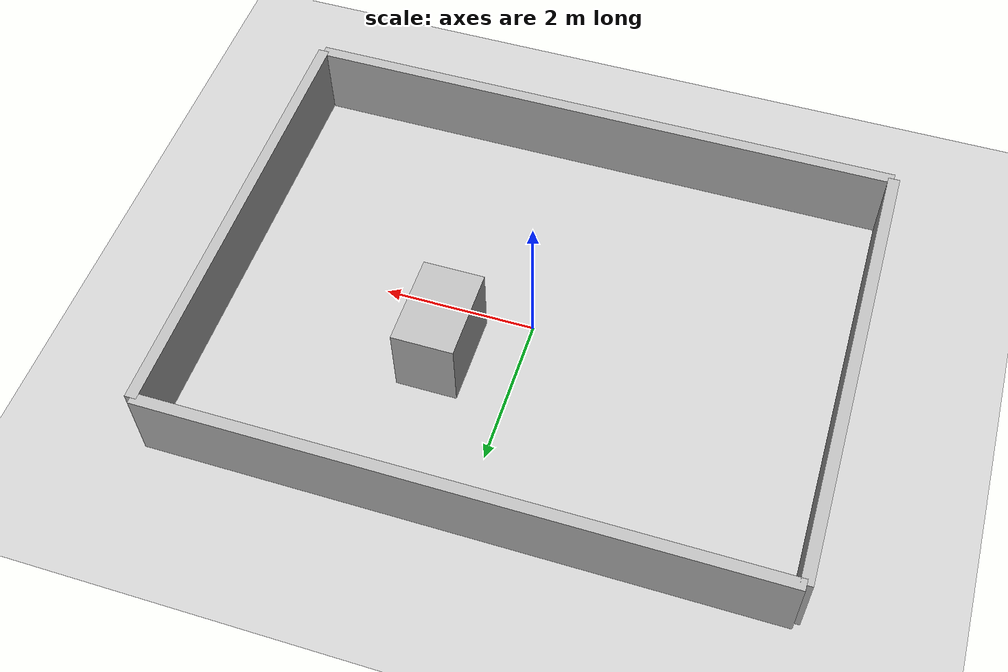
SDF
<?xml version="1.0"?>
<sdf version="1.6">
  <world name="s1_m5_navigation">
    <include><uri>model://ground_plane</uri></include>
    <include><uri>model://sun</uri></include>
    <model name="north_wall"><static>true</static><pose>0 3 0.5 0 0 0</pose><link name="link"><collision name="collision"><geometry><box><size>8 0.15 1</size></box></geometry></collision><visual name="visual"><geometry><box><size>8 0.15 1</size></box></geometry></visual></link></model>
    <model name="south_wall"><static>true</static><pose>0 -3 0.5 0 0 0</pose><link name="link"><collision name="collision"><geometry><box><size>8 0.15 1</size></box></geometry></collision><visual name="visual"><geometry><box><size>8 0.15 1</size></box></geometry></visual></link></model>
    <model name="east_wall"><static>true</static><pose>4 0 0.5 0 0 0</pose><link name="link"><collision name="collision"><geometry><box><size>0.15 6 1</size></box></geometry></collision><visual name="visual"><geometry><box><size>0.15 6 1</size></box></geometry></visual></link></model>
    <model name="west_wall"><static>true</static><pose>-4 0 0.5 0 0 0</pose><link name="link"><collision name="collision"><geometry><box><size>0.15 6 1</size></box></geometry></collision><visual name="visual"><geometry><box><size>0.15 6 1</size></box></geometry></visual></link></model>
    <model name="central_obstacle"><static>true</static><pose>1 0.7 0.5 0 0 0</pose><link name="link"><collision name="collision"><geometry><box><size>0.8 1.2 1</size></box></geometry></collision><visual name="visual"><geometry><box><size>0.8 1.2 1</size></box></geometry></visual></link></model>
  </world>
</sdf>
